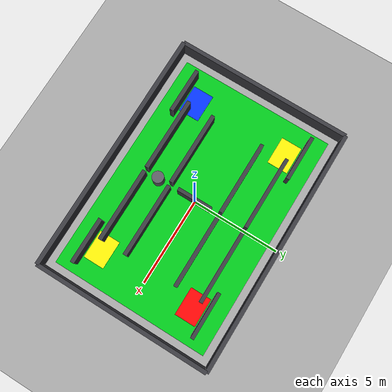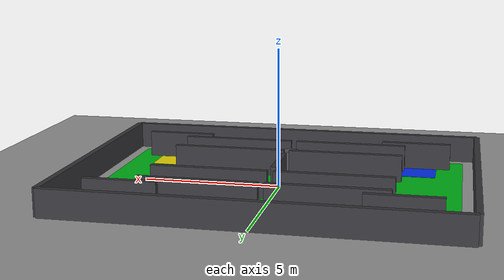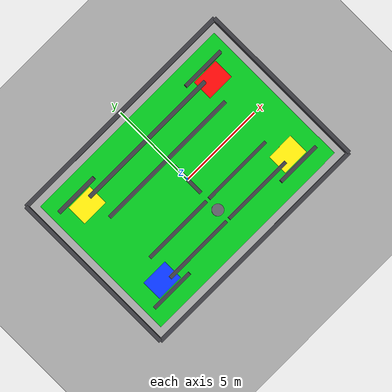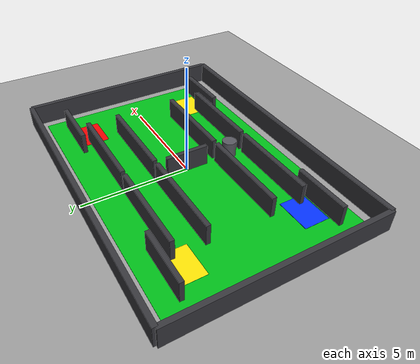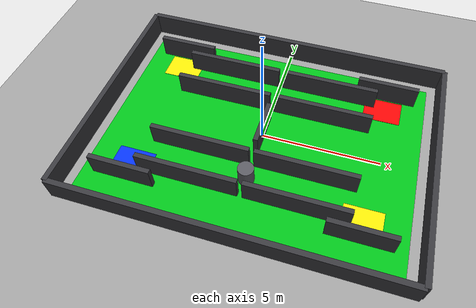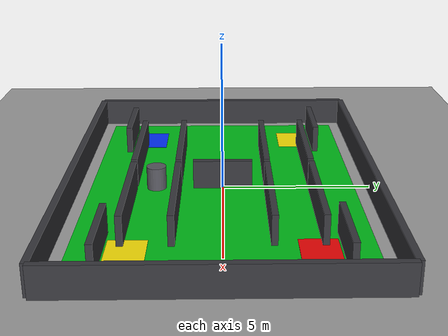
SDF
<?xml version="1.0"?>
<sdf version="1.6">
  <world name="dead_ends">
    <gravity>0 0 -9.8</gravity>
    <scene>
      <ambient>0.55 0.55 0.55 1</ambient>
      <background>0.78 0.82 0.86 1</background>
      <shadows>true</shadows>
    </scene>

    <light type="directional" name="sun">
      <cast_shadows>true</cast_shadows>
      <pose>0 0 12 0 0 0</pose>
      <diffuse>0.95 0.95 0.9 1</diffuse>
      <specular>0.15 0.15 0.15 1</specular>
      <direction>-0.35 0.25 -0.9</direction>
    </light>

    <model name="ground_plane">
      <static>true</static>
      <link name="link">
        <collision name="collision">
          <geometry><plane><normal>0 0 1</normal></plane></geometry>
          <surface>
            <friction><ode><mu>1.0</mu><mu2>1.0</mu2></ode></friction>
          </surface>
        </collision>
        <visual name="visual">
          <geometry><plane><normal>0 0 1</normal><size>80 80</size></plane></geometry>
          <material><ambient>0.62 0.62 0.62 1</ambient><diffuse>0.62 0.62 0.62 1</diffuse></material>
        </visual>
      </link>
    </model>

    <model name="green_base_floor">
      <static>true</static>
      <pose>0 0 0.012 0 0 0</pose>
      <link name="link">
        <visual name="visual">
          <geometry><box><size>13.0 9.0 0.01</size></box></geometry>
          <material><ambient>0.0 0.75 0.1 1</ambient><diffuse>0.0 0.75 0.1 1</diffuse></material>
        </visual>
      </link>
    </model>

    <model name="yellow_dead_end_one_double_check">
      <static>true</static>
      <pose>-4.7 2.8 0.02 0 0 0</pose>
      <link name="link">
        <visual name="visual">
          <geometry><box><size>1.6 1.2 0.01</size></box></geometry>
          <material><ambient>1.0 0.9 0.02 1</ambient><diffuse>1.0 0.9 0.02 1</diffuse></material>
        </visual>
      </link>
    </model>

    <model name="yellow_dead_end_two_double_check">
      <static>true</static>
      <pose>4.7 -2.8 0.02 0 0 0</pose>
      <link name="link">
        <visual name="visual">
          <geometry><box><size>1.6 1.2 0.01</size></box></geometry>
          <material><ambient>1.0 0.9 0.02 1</ambient><diffuse>1.0 0.9 0.02 1</diffuse></material>
        </visual>
      </link>
    </model>

    <model name="red_false_branch_cctv">
      <static>true</static>
      <pose>4.7 2.8 0.022 0 0 0</pose>
      <link name="link">
        <visual name="visual">
          <geometry><box><size>1.6 1.2 0.01</size></box></geometry>
          <material><ambient>0.95 0.02 0.02 1</ambient><diffuse>0.95 0.02 0.02 1</diffuse></material>
        </visual>
      </link>
    </model>

    <model name="blue_known_safe_branch">
      <static>true</static>
      <pose>-4.7 -2.8 0.022 0 0 0</pose>
      <link name="link">
        <visual name="visual">
          <geometry><box><size>1.6 1.2 0.01</size></box></geometry>
          <material><ambient>0.02 0.2 1.0 1</ambient><diffuse>0.02 0.2 1.0 1</diffuse></material>
        </visual>
      </link>
    </model>

    <model name="outer_north">
      <static>true</static>
      <pose>0 5.0 0.500 0 0 0</pose>
      <link name="link">
        <collision name="collision"><geometry><box><size>14 0.22 1.0</size></box></geometry></collision>
        <visual name="visual"><geometry><box><size>14 0.22 1.0</size></box></geometry><material><ambient>0.22 0.22 0.24 1</ambient><diffuse>0.22 0.22 0.24 1</diffuse></material></visual>
      </link>
    </model>

    <model name="outer_south">
      <static>true</static>
      <pose>0 -5.0 0.500 0 0 0</pose>
      <link name="link">
        <collision name="collision"><geometry><box><size>14 0.22 1.0</size></box></geometry></collision>
        <visual name="visual"><geometry><box><size>14 0.22 1.0</size></box></geometry><material><ambient>0.22 0.22 0.24 1</ambient><diffuse>0.22 0.22 0.24 1</diffuse></material></visual>
      </link>
    </model>

    <model name="outer_east">
      <static>true</static>
      <pose>7.0 0 0.500 0 0 1.5708</pose>
      <link name="link">
        <collision name="collision"><geometry><box><size>10 0.22 1.0</size></box></geometry></collision>
        <visual name="visual"><geometry><box><size>10 0.22 1.0</size></box></geometry><material><ambient>0.22 0.22 0.24 1</ambient><diffuse>0.22 0.22 0.24 1</diffuse></material></visual>
      </link>
    </model>

    <model name="outer_west">
      <static>true</static>
      <pose>-7.0 0 0.500 0 0 1.5708</pose>
      <link name="link">
        <collision name="collision"><geometry><box><size>10 0.22 1.0</size></box></geometry></collision>
        <visual name="visual"><geometry><box><size>10 0.22 1.0</size></box></geometry><material><ambient>0.22 0.22 0.24 1</ambient><diffuse>0.22 0.22 0.24 1</diffuse></material></visual>
      </link>
    </model>

    <model name="branch_divider_left_0">
      <static>true</static>
      <pose>-2.2 -3.0 0.500 0 0 0</pose>
      <link name="link">
        <collision name="collision"><geometry><box><size>4.2 0.2 1.0</size></box></geometry></collision>
        <visual name="visual"><geometry><box><size>4.2 0.2 1.0</size></box></geometry><material><ambient>0.22 0.22 0.24 1</ambient><diffuse>0.22 0.22 0.24 1</diffuse></material></visual>
      </link>
    </model>

    <model name="branch_divider_right_0">
      <static>true</static>
      <pose>2.2 -3.0 0.500 0 0 0</pose>
      <link name="link">
        <collision name="collision"><geometry><box><size>4.2 0.2 1.0</size></box></geometry></collision>
        <visual name="visual"><geometry><box><size>4.2 0.2 1.0</size></box></geometry><material><ambient>0.22 0.22 0.24 1</ambient><diffuse>0.22 0.22 0.24 1</diffuse></material></visual>
      </link>
    </model>

    <model name="branch_divider_left_1">
      <static>true</static>
      <pose>-2.2 -1.5 0.500 0 0 0</pose>
      <link name="link">
        <collision name="collision"><geometry><box><size>4.2 0.2 1.0</size></box></geometry></collision>
        <visual name="visual"><geometry><box><size>4.2 0.2 1.0</size></box></geometry><material><ambient>0.22 0.22 0.24 1</ambient><diffuse>0.22 0.22 0.24 1</diffuse></material></visual>
      </link>
    </model>

    <model name="branch_divider_right_1">
      <static>true</static>
      <pose>2.2 -1.5 0.500 0 0 0</pose>
      <link name="link">
        <collision name="collision"><geometry><box><size>4.2 0.2 1.0</size></box></geometry></collision>
        <visual name="visual"><geometry><box><size>4.2 0.2 1.0</size></box></geometry><material><ambient>0.22 0.22 0.24 1</ambient><diffuse>0.22 0.22 0.24 1</diffuse></material></visual>
      </link>
    </model>

    <model name="branch_divider_left_2">
      <static>true</static>
      <pose>-2.2 1.5 0.500 0 0 0</pose>
      <link name="link">
        <collision name="collision"><geometry><box><size>4.2 0.2 1.0</size></box></geometry></collision>
        <visual name="visual"><geometry><box><size>4.2 0.2 1.0</size></box></geometry><material><ambient>0.22 0.22 0.24 1</ambient><diffuse>0.22 0.22 0.24 1</diffuse></material></visual>
      </link>
    </model>

    <model name="branch_divider_right_2">
      <static>true</static>
      <pose>2.2 1.5 0.500 0 0 0</pose>
      <link name="link">
        <collision name="collision"><geometry><box><size>4.2 0.2 1.0</size></box></geometry></collision>
        <visual name="visual"><geometry><box><size>4.2 0.2 1.0</size></box></geometry><material><ambient>0.22 0.22 0.24 1</ambient><diffuse>0.22 0.22 0.24 1</diffuse></material></visual>
      </link>
    </model>

    <model name="branch_divider_left_3">
      <static>true</static>
      <pose>-2.2 3.0 0.500 0 0 0</pose>
      <link name="link">
        <collision name="collision"><geometry><box><size>4.2 0.2 1.0</size></box></geometry></collision>
        <visual name="visual"><geometry><box><size>4.2 0.2 1.0</size></box></geometry><material><ambient>0.22 0.22 0.24 1</ambient><diffuse>0.22 0.22 0.24 1</diffuse></material></visual>
      </link>
    </model>

    <model name="branch_divider_right_3">
      <static>true</static>
      <pose>2.2 3.0 0.500 0 0 0</pose>
      <link name="link">
        <collision name="collision"><geometry><box><size>4.2 0.2 1.0</size></box></geometry></collision>
        <visual name="visual"><geometry><box><size>4.2 0.2 1.0</size></box></geometry><material><ambient>0.22 0.22 0.24 1</ambient><diffuse>0.22 0.22 0.24 1</diffuse></material></visual>
      </link>
    </model>

    <model name="left_deadend_cap_top">
      <static>true</static>
      <pose>-4.7 3.55 0.500 0 0 0</pose>
      <link name="link">
        <collision name="collision"><geometry><box><size>2.6 0.2 1.0</size></box></geometry></collision>
        <visual name="visual"><geometry><box><size>2.6 0.2 1.0</size></box></geometry><material><ambient>0.22 0.22 0.24 1</ambient><diffuse>0.22 0.22 0.24 1</diffuse></material></visual>
      </link>
    </model>

    <model name="left_deadend_cap_bottom">
      <static>true</static>
      <pose>-4.7 -3.55 0.500 0 0 0</pose>
      <link name="link">
        <collision name="collision"><geometry><box><size>2.6 0.2 1.0</size></box></geometry></collision>
        <visual name="visual"><geometry><box><size>2.6 0.2 1.0</size></box></geometry><material><ambient>0.22 0.22 0.24 1</ambient><diffuse>0.22 0.22 0.24 1</diffuse></material></visual>
      </link>
    </model>

    <model name="right_deadend_cap_top">
      <static>true</static>
      <pose>4.7 3.55 0.500 0 0 0</pose>
      <link name="link">
        <collision name="collision"><geometry><box><size>2.6 0.2 1.0</size></box></geometry></collision>
        <visual name="visual"><geometry><box><size>2.6 0.2 1.0</size></box></geometry><material><ambient>0.22 0.22 0.24 1</ambient><diffuse>0.22 0.22 0.24 1</diffuse></material></visual>
      </link>
    </model>

    <model name="right_deadend_cap_bottom">
      <static>true</static>
      <pose>4.7 -3.55 0.500 0 0 0</pose>
      <link name="link">
        <collision name="collision"><geometry><box><size>2.6 0.2 1.0</size></box></geometry></collision>
        <visual name="visual"><geometry><box><size>2.6 0.2 1.0</size></box></geometry><material><ambient>0.22 0.22 0.24 1</ambient><diffuse>0.22 0.22 0.24 1</diffuse></material></visual>
      </link>
    </model>

    <model name="center_split_short_wall">
      <static>true</static>
      <pose>0 0 0.500 0 0 0</pose>
      <link name="link">
        <collision name="collision"><geometry><box><size>0.2 2.0 1.0</size></box></geometry></collision>
        <visual name="visual"><geometry><box><size>0.2 2.0 1.0</size></box></geometry><material><ambient>0.22 0.22 0.24 1</ambient><diffuse>0.22 0.22 0.24 1</diffuse></material></visual>
      </link>
    </model>

    <model name="round_obstacle_near_return_path">
      <static>true</static>
      <pose>0.0 -2.25 0.400 0 0 0</pose>
      <link name="link">
        <collision name="collision"><geometry><cylinder><radius>0.33</radius><length>0.8</length></cylinder></geometry></collision>
        <visual name="visual"><geometry><cylinder><radius>0.33</radius><length>0.8</length></cylinder></geometry><material><ambient>0.35 0.35 0.38 1</ambient><diffuse>0.35 0.35 0.38 1</diffuse></material></visual>
      </link>
    </model>

  </world>
</sdf>
